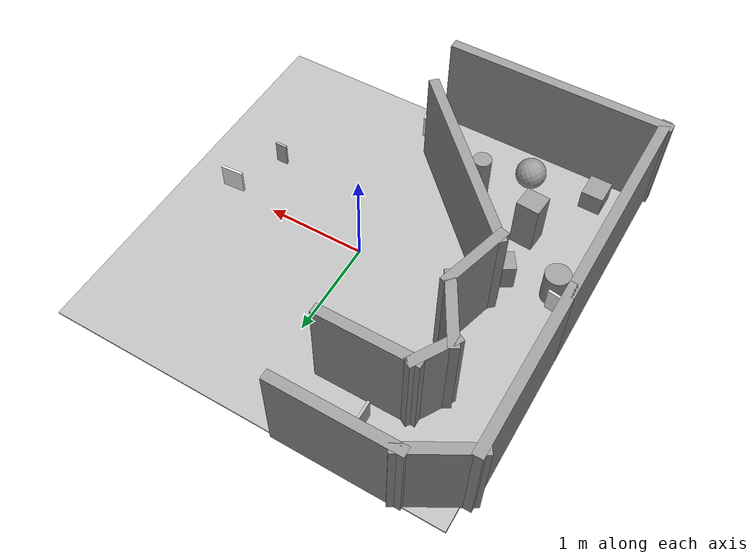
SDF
<sdf version="1.6">
 <world name="auefinals">
  <scene>
   <ambient>0 0 0 1</ambient>
   <shadows>0</shadows>
   <grid>0</grid>
   <background>0.7 0.7 0.7 1</background>
  </scene>
  <model name="course">
   <static>1</static>
   <link name="course_link">
    <collision name="course_collision">
     <geometry><plane><normal>0 0 1</normal><size>4 4</size></plane></geometry>
     <surface><friction><ode><mu>100</mu><mu2>50</mu2></ode></friction></surface>
    </collision>
    <visual name="course_visual">
     <cast_shadows>0</cast_shadows>
     <geometry><plane><normal>0 0 1</normal><size>4 4</size></plane></geometry>
     <material>
      <script>
       <uri>model://course/materials/scripts</uri>
       <uri>model://course/materials/textures</uri>
       <name>course</name>
      </script>
     </material>
    </visual>
   </link>
   <pose>0 0 0 0 -0 1.5708</pose>
  </model>
  <light name="sun" type="directional">
   <pose>0 0 10 0 -0 0</pose>
   <diffuse>0.8 0.8 0.8 1</diffuse>
   <specular>0.1 0.1 0.1 1</specular>
   <attenuation>
    <range>1000</range>
    <constant>0.9</constant>
    <linear>0.01</linear>
    <quadratic>0.001</quadratic>
   </attenuation>
   <direction>-0.5 0.5 -1</direction>
  </light>
  <model name="ground2">
   <pose>-0.003421 -0.000423 -0.01 0 -0 0</pose>
   <static>1</static>
   <link name="ground">
    <collision name="ground_coll"><geometry><box><size>4 4 0.01</size></box></geometry></collision>
    <visual name="ground_vis">
     <geometry><box><size>4 4 0.01</size></box></geometry>
     <material>
      <script><uri>file://media/materials/scripts/gazebo.material</uri><name>Gazebo/FlatBlack</name></script>
     </material>
    </visual>
   </link>
  </model>
  <gravity>0 0 -9.8</gravity>
  <magnetic_field>6e-06 2.3e-05 -4.2e-05</magnetic_field>
  <atmosphere type="adiabatic"/>
  <physics name="default_physics" default="0" type="ode">
   <max_step_size>0.001</max_step_size>
   <real_time_factor>1</real_time_factor>
   <real_time_update_rate>1000</real_time_update_rate>
  </physics>
  <spherical_coordinates>
   <surface_model>EARTH_WGS84</surface_model>
   <latitude_deg>0</latitude_deg>
   <longitude_deg>0</longitude_deg>
   <elevation>0</elevation>
   <heading_deg>0</heading_deg>
  </spherical_coordinates>
  <light name="user_point_light_2" type="point">
   <pose>-0.948146 0.604519 1 0 -0 0</pose>
   <diffuse>0.5 0.5 0.5 1</diffuse>
   <specular>0.1 0.1 0.1 1</specular>
   <attenuation>
    <range>20</range>
    <constant>0.5</constant>
    <linear>0.01</linear>
    <quadratic>0.001</quadratic>
   </attenuation>
   <cast_shadows>0</cast_shadows>
   <direction>0 0 -1</direction>
  </light>
  <light name="user_point_light_6" type="point">
   <pose>1.63854 1.69565 1 0 -0 0</pose>
   <diffuse>0.5 0.5 0.5 1</diffuse>
   <specular>0.1 0.1 0.1 1</specular>
   <attenuation>
    <range>20</range>
    <constant>0.5</constant>
    <linear>0.01</linear>
    <quadratic>0.001</quadratic>
   </attenuation>
   <cast_shadows>0</cast_shadows>
   <direction>0 0 -1</direction>
  </light>
  <light name="user_point_light_7" type="point">
   <pose>0.42 -3.31 1 0 -0 0</pose>
   <diffuse>0.5 0.5 0.5 1</diffuse>
   <specular>0.1 0.1 0.1 1</specular>
   <attenuation>
    <range>20</range>
    <constant>0.5</constant>
    <linear>0.01</linear>
    <quadratic>0.001</quadratic>
   </attenuation>
   <cast_shadows>0</cast_shadows>
   <direction>0 0 -1</direction>
  </light>
  <light name="user_point_light_8" type="point">
   <pose>-1.8 1.5 1 0 -0 0</pose>
   <diffuse>0.5 0.5 0.5 1</diffuse>
   <specular>0.1 0.1 0.1 1</specular>
   <attenuation>
    <range>20</range>
    <constant>0.5</constant>
    <linear>0.01</linear>
    <quadratic>0.001</quadratic>
   </attenuation>
   <cast_shadows>0</cast_shadows>
   <direction>0 0 -1</direction>
  </light>
  <model name="unit_box_0">
   <pose>-1.67923 -1.71215 0.0732 2e-06 3e-06 1.56162</pose>
   <link name="link">
    <inertial>
     <mass>1</mass>
     <inertia>
      <ixx>0.166667</ixx>
      <ixy>0</ixy>
      <ixz>0</ixz>
      <iyy>0.166667</iyy>
      <iyz>0</iyz>
      <izz>0.166667</izz>
     </inertia>
    </inertial>
    <collision name="collision">
     <geometry><box><size>0.245846 0.219412 0.286399</size></box></geometry>
    </collision>
    <visual name="visual">
     <geometry><box><size>0.245846 0.219412 0.286399</size></box></geometry>
     <material>
      <script><name>Gazebo/Grey</name><uri>file://media/materials/scripts/gazebo.material</uri></script>
     </material>
    </visual>
   </link>
  </model>
  <model name="unit_box_1">
   <pose>-1.33179 -0.434125 0.142264 -7e-06 -1.6e-05 0.564785</pose>
   <link name="link">
    <inertial>
     <mass>1</mass>
     <inertia>
      <ixx>0.166667</ixx>
      <ixy>0</ixy>
      <ixz>0</ixz>
      <iyy>0.166667</iyy>
      <iyz>0</iyz>
      <izz>0.166667</izz>
     </inertia>
    </inertial>
    <collision name="collision">
     <geometry><box><size>0.130992 0.203212 0.284528</size></box></geometry>
    </collision>
    <visual name="visual">
     <geometry><box><size>0.130992 0.203212 0.284528</size></box></geometry>
     <material>
      <script><name>Gazebo/Grey</name><uri>file://media/materials/scripts/gazebo.material</uri></script>
     </material>
    </visual>
   </link>
  </model>
  <model name="unit_cylinder_0">
   <pose>-0.681949 -1.12984 0.310915 0.002439 0.005411 -0.242273</pose>
   <link name="link">
    <inertial>
     <mass>1</mass>
     <inertia><ixx>0.145833</ixx><ixy>0</ixy><ixz>0</ixz><iyy>0.145833</iyy><iyz>0</iyz><izz>0.125</izz></inertia>
    </inertial>
    <collision name="collision">
     <geometry><cylinder><radius>0.091359</radius><length>0.620756</length></cylinder></geometry>
    </collision>
    <visual name="visual">
     <geometry><cylinder><radius>0.091359</radius><length>0.620756</length></cylinder></geometry>
     <material>
      <script><name>Gazebo/Grey</name><uri>file://media/materials/scripts/gazebo.material</uri></script>
     </material>
    </visual>
   </link>
  </model>
  <model name="Walls">
   <pose>-1.00889 -0.012836 0 0 -0 0</pose>
   <link name="Wall_10">
    <collision name="Wall_10_Collision">
     <geometry><box><size>2 0.1 1</size></box></geometry>
     <pose>0 0 0.5 0 -0 0</pose>
     <surface>
      <friction>
       <ode><mu>1</mu><mu2>1</mu2><fdir1>0 0 0</fdir1><slip1>0</slip1><slip2>0</slip2></ode>
       <torsional>
        <coefficient>1</coefficient>
        <patch_radius>0</patch_radius>
        <surface_radius>0</surface_radius>
        <use_patch_radius>1</use_patch_radius>
        <ode><slip>0</slip></ode>
       </torsional>
      </friction>
      <bounce><restitution_coefficient>0</restitution_coefficient><threshold>1e+06</threshold></bounce>
      <contact>
       <collide_without_contact>0</collide_without_contact>
       <collide_without_contact_bitmask>1</collide_without_contact_bitmask>
       <collide_bitmask>1</collide_bitmask>
       <ode>
        <soft_cfm>0</soft_cfm>
        <soft_erp>0.2</soft_erp>
        <kp>1e+13</kp>
        <kd>1</kd>
        <max_vel>0.01</max_vel>
        <min_depth>0</min_depth>
       </ode>
       <bullet>
        <split_impulse>1</split_impulse>
        <split_impulse_penetration_threshold>-0.01</split_impulse_penetration_threshold>
        <soft_cfm>0</soft_cfm>
        <soft_erp>0.2</soft_erp>
        <kp>1e+13</kp>
        <kd>1</kd>
       </bullet>
      </contact>
     </surface>
    </collision>
    <visual name="Wall_10_Visual">
     <pose>0 0 0.5 0 -0 0</pose>
     <geometry><box><size>2 0.1 1</size></box></geometry>
     <material>
      <script><uri>file://media/materials/scripts/gazebo.material</uri><name>Gazebo/Grey</name></script>
      <ambient>1 1 1 1</ambient>
     </material>
    </visual>
    <pose>0.35664 -0.75882 0 0 -0 2.35619</pose>
   </link>
   <link name="Wall_12">
    <collision name="Wall_12_Collision">
     <geometry><box><size>2.26002 0.1 1</size></box></geometry>
     <pose>0 0 0.5 0 -0 0</pose>
    </collision>
    <visual name="Wall_12_Visual">
     <pose>0 0 0.5 0 -0 0</pose>
     <geometry><box><size>2.26002 0.1 1</size></box></geometry>
     <material>
      <script><uri>file://media/materials/scripts/gazebo.material</uri><name>Gazebo/Grey</name></script>
      <ambient>1 1 1 1</ambient>
     </material>
    </visual>
    <pose>0.01372 -2.01873 0 0 -0 3.14159</pose>
   </link>
   <link name="Wall_13">
    <collision name="Wall_13_Collision">
     <geometry><box><size>2.25 0.1 1</size></box></geometry>
     <pose>0 0 0.5 0 -0 0</pose>
    </collision>
    <visual name="Wall_13_Visual">
     <pose>0 0 0.5 0 -0 0</pose>
     <geometry><box><size>2.25 0.1 1</size></box></geometry>
     <material>
      <script><uri>file://media/materials/scripts/gazebo.material</uri><name>Gazebo/Grey</name></script>
      <ambient>1 1 1 1</ambient>
     </material>
    </visual>
    <pose>-1.04128 -0.958726 0 0 -0 1.5708</pose>
   </link>
   <link name="Wall_19">
    <collision name="Wall_19_Collision">
     <geometry><box><size>1.75 0.1 1</size></box></geometry>
     <pose>0 0 0.5 0 -0 0</pose>
    </collision>
    <visual name="Wall_19_Visual">
     <pose>0 0 0.5 0 -0 0</pose>
     <geometry><box><size>1.75 0.1 1</size></box></geometry>
     <material>
      <script><uri>file://media/materials/scripts/gazebo.material</uri><name>Gazebo/Grey</name></script>
      <ambient>1 1 1 1</ambient>
     </material>
    </visual>
    <pose>-1.04128 0.891274 0 0 -0 1.5708</pose>
   </link>
   <link name="Wall_21">
    <collision name="Wall_21_Collision">
     <geometry><box><size>0.75 0.1 1</size></box></geometry>
     <pose>0 0 0.5 0 -0 0</pose>
    </collision>
    <visual name="Wall_21_Visual">
     <pose>0 0 0.5 0 -0 0</pose>
     <geometry><box><size>0.75 0.1 1</size></box></geometry>
     <material>
      <script><uri>file://media/materials/scripts/gazebo.material</uri><name>Gazebo/Grey</name></script>
      <ambient>1 1 1 1</ambient>
     </material>
    </visual>
    <pose>-0.781472 1.84127 0 0 -0 0.523599</pose>
   </link>
   <link name="Wall_22">
    <collision name="Wall_22_Collision">
     <geometry><box><size>1.25 0.1 1</size></box></geometry>
     <pose>0 0 0.5 0 -0 0</pose>
    </collision>
    <visual name="Wall_22_Visual">
     <pose>0 0 0.5 0 -0 0</pose>
     <geometry><box><size>1.25 0.1 1</size></box></geometry>
     <material>
      <script><uri>file://media/materials/scripts/gazebo.material</uri><name>Gazebo/Grey</name></script>
      <ambient>1 1 1 1</ambient>
     </material>
    </visual>
    <pose>0.028335 1.99127 0 0 -0 0</pose>
   </link>
   <link name="Wall_24">
    <collision name="Wall_24_Collision">
     <geometry><box><size>0.75 0.1 1</size></box></geometry>
     <pose>0 0 0.5 0 -0 0</pose>
    </collision>
    <visual name="Wall_24_Visual">
     <pose>0 0 0.5 0 -0 0</pose>
     <geometry><box><size>0.75 0.1 1</size></box></geometry>
     <material>
      <script><uri>file://media/materials/scripts/gazebo.material</uri><name>Gazebo/Grey</name></script>
      <ambient>1 1 1 1</ambient>
     </material>
    </visual>
    <pose>-0.219788 0.185031 0 0 -0 1.309</pose>
   </link>
   <link name="Wall_25">
    <collision name="Wall_25_Collision">
     <geometry><box><size>0.75 0.1 1</size></box></geometry>
     <pose>0 0 0.5 0 -0 0</pose>
    </collision>
    <visual name="Wall_25_Visual">
     <pose>0 0 0.5 0 -0 0</pose>
     <geometry><box><size>0.75 0.1 1</size></box></geometry>
     <material>
      <script><uri>file://media/materials/scripts/gazebo.material</uri><name>Gazebo/Grey</name></script>
      <ambient>1 1 1 1</ambient>
     </material>
    </visual>
    <pose>-0.292142 0.734617 0 0 -0 2.0944</pose>
   </link>
   <link name="Wall_26">
    <collision name="Wall_26_Collision">
     <geometry><box><size>0.5 0.1 1</size></box></geometry>
     <pose>0 0 0.5 0 -0 0</pose>
    </collision>
    <visual name="Wall_26_Visual">
     <pose>0 0 0.5 0 -0 0</pose>
     <geometry><box><size>0.5 0.1 1</size></box></geometry>
     <material>
      <script><uri>file://media/materials/scripts/gazebo.material</uri><name>Gazebo/Grey</name></script>
      <ambient>1 1 1 1</ambient>
     </material>
    </visual>
    <pose>-0.354642 1.14598 0 0 -0 1.0472</pose>
   </link>
   <link name="Wall_27">
    <collision name="Wall_27_Collision">
     <geometry><box><size>1 0.1 1</size></box></geometry>
     <pose>0 0 0.5 0 -0 0</pose>
     <surface>
      <friction>
       <ode><mu>1</mu><mu2>1</mu2><fdir1>0 0 0</fdir1><slip1>0</slip1><slip2>0</slip2></ode>
       <torsional>
        <coefficient>1</coefficient>
        <patch_radius>0</patch_radius>
        <surface_radius>0</surface_radius>
        <use_patch_radius>1</use_patch_radius>
        <ode><slip>0</slip></ode>
       </torsional>
      </friction>
      <bounce><restitution_coefficient>0</restitution_coefficient><threshold>1e+06</threshold></bounce>
      <contact>
       <collide_without_contact>0</collide_without_contact>
       <collide_without_contact_bitmask>1</collide_without_contact_bitmask>
       <collide_bitmask>1</collide_bitmask>
       <ode>
        <soft_cfm>0</soft_cfm>
        <soft_erp>0.2</soft_erp>
        <kp>1e+13</kp>
        <kd>1</kd>
        <max_vel>0.01</max_vel>
        <min_depth>0</min_depth>
       </ode>
       <bullet>
        <split_impulse>1</split_impulse>
        <split_impulse_penetration_threshold>-0.01</split_impulse_penetration_threshold>
        <soft_cfm>0</soft_cfm>
        <soft_erp>0.2</soft_erp>
        <kp>1e+13</kp>
        <kd>1</kd>
       </bullet>
      </contact>
     </surface>
    </collision>
    <visual name="Wall_27_Visual">
     <pose>0 0 0.5 0 -0 0</pose>
     <geometry><box><size>1 0.1 1</size></box></geometry>
     <material>
      <script><uri>file://media/materials/scripts/gazebo.material</uri><name>Gazebo/Grey</name></script>
      <ambient>1 1 1 1</ambient>
     </material>
    </visual>
    <pose>0.157858 1.29753 0 0 -0 0</pose>
   </link>
   <static>1</static>
  </model>
  <model name="traffic_stop">
   <static>1</static>
   <link name="box">
    <collision name="collision"><geometry><box><size>0.12 0.025 0.25</size></box></geometry></collision>
    <visual name="visual">
     <geometry><box><size>0.12 0.025 0.25</size></box></geometry>
     <material>
      <script>
       <uri>model://traffic_stop/materials/scripts</uri>
       <uri>model://traffic_stop/materials/textures</uri>
       <name>traffic_stop</name>
      </script>
     </material>
    </visual>
    <kinematic>0ag</kinematic>
   </link>
   <pose>1.2689 -0.587152 0.126884 0 -0 0</pose>
  </model>
  <model name="april_tag_0">
   <static>1</static>
   <link name="box">
    <collision name="collision"><geometry><box><size>0.224411 0.025 0.25</size></box></geometry></collision>
    <visual name="visual">
     <geometry><box><size>0.224411 0.025 0.25</size></box></geometry>
     <material>
      <script>
       <uri>model://april_tag_0/materials/scripts</uri>
       <uri>model://april_tag_0/materials/textures</uri>
       <name>april_tag_0</name>
      </script>
     </material>
    </visual>
   </link>
   <pose>-0.999582 1.60915 0.270453 0 -0 1.58123</pose>
  </model>
  <model name="unit_sphere_0">
   <pose>-1.02848 -1.61152 0.153046 0.696979 0.376873 0.737573</pose>
   <link name="link">
    <inertial>
     <mass>1</mass>
     <inertia><ixx>0.1</ixx><ixy>0</ixy><ixz>0</ixz><iyy>0.1</iyy><iyz>0</iyz><izz>0.1</izz></inertia>
    </inertial>
    <collision name="collision"><geometry><sphere><radius>0.153046</radius></sphere></geometry></collision>
    <visual name="visual">
     <geometry><sphere><radius>0.153046</radius></sphere></geometry>
     <material>
      <script><name>Gazebo/Grey</name><uri>file://media/materials/scripts/gazebo.material</uri></script>
     </material>
    </visual>
   </link>
  </model>
  <model name="april_tag_1">
   <link name="box">
    <pose>0 0 0 0 -0 2.46246</pose>
    <visual name="visual">
     <geometry><box><size>0.224411 0.025 0.25</size></box></geometry>
     <material>
      <script>
       <uri>model://april_tag_1/materials/scripts</uri>
       <uri>model://april_tag_1/materials/textures</uri>
       <name>april_tag_1</name>
      </script>
      <ambient>1 1 1 1</ambient>
      <diffuse>1 1 1 1</diffuse>
      <specular>0 0 0 1</specular>
      <emissive>0 0 0 1</emissive>
     </material>
    </visual>
    <collision name="collision">
     <geometry><box><size>0.224411 0.025 0.25</size></box></geometry>
     <surface>
      <friction>
       <ode><mu>1</mu><mu2>1</mu2><fdir1>0 0 0</fdir1><slip1>0</slip1><slip2>0</slip2></ode>
       <torsional>
        <coefficient>1</coefficient>
        <patch_radius>0</patch_radius>
        <surface_radius>0</surface_radius>
        <use_patch_radius>1</use_patch_radius>
        <ode><slip>0</slip></ode>
       </torsional>
      </friction>
      <bounce><restitution_coefficient>0</restitution_coefficient><threshold>1e+06</threshold></bounce>
      <contact>
       <collide_without_contact>0</collide_without_contact>
       <collide_without_contact_bitmask>1</collide_without_contact_bitmask>
       <collide_bitmask>1</collide_bitmask>
       <ode>
        <soft_cfm>0</soft_cfm>
        <soft_erp>0.2</soft_erp>
        <kp>1e+13</kp>
        <kd>1</kd>
        <max_vel>0.01</max_vel>
        <min_depth>0</min_depth>
       </ode>
       <bullet>
        <split_impulse>1</split_impulse>
        <split_impulse_penetration_threshold>-0.01</split_impulse_penetration_threshold>
        <soft_cfm>0</soft_cfm>
        <soft_erp>0.2</soft_erp>
        <kp>1e+13</kp>
        <kd>1</kd>
       </bullet>
      </contact>
     </surface>
    </collision>
   </link>
   <static>1</static>
   <pose>-1.89102 -0.32361 0.134435 0 -0.006148 0.532089</pose>
  </model>
  <model name="april_tag_2">
   <link name="box">
    <pose>0 0 0 0 -0 2.46246</pose>
    <visual name="visual">
     <geometry><box><size>0.224411 0.025 0.25</size></box></geometry>
     <material>
      <script>
       <uri>model://april_tag_2/materials/scripts</uri>
       <uri>model://april_tag_2/materials/textures</uri>
       <name>april_tag_2</name>
      </script>
      <ambient>1 1 1 1</ambient>
      <diffuse>1 1 1 1</diffuse>
      <specular>0 0 0 1</specular>
      <emissive>0 0 0 1</emissive>
     </material>
    </visual>
    <collision name="collision">
     <geometry><box><size>0.224411 0.025 0.25</size></box></geometry>
     <surface>
      <friction>
       <ode><mu>1</mu><mu2>1</mu2><fdir1>0 0 0</fdir1><slip1>0</slip1><slip2>0</slip2></ode>
       <torsional>
        <coefficient>1</coefficient>
        <patch_radius>0</patch_radius>
        <surface_radius>0</surface_radius>
        <use_patch_radius>1</use_patch_radius>
        <ode><slip>0</slip></ode>
       </torsional>
      </friction>
      <bounce><restitution_coefficient>0</restitution_coefficient><threshold>1e+06</threshold></bounce>
      <contact>
       <collide_without_contact>0</collide_without_contact>
       <collide_without_contact_bitmask>1</collide_without_contact_bitmask>
       <collide_bitmask>1</collide_bitmask>
       <ode>
        <soft_cfm>0</soft_cfm>
        <soft_erp>0.2</soft_erp>
        <kp>1e+13</kp>
        <kd>1</kd>
        <max_vel>0.01</max_vel>
        <min_depth>0</min_depth>
       </ode>
       <bullet>
        <split_impulse>1</split_impulse>
        <split_impulse_penetration_threshold>-0.01</split_impulse_penetration_threshold>
        <soft_cfm>0</soft_cfm>
        <soft_erp>0.2</soft_erp>
        <kp>1e+13</kp>
        <kd>1</kd>
       </bullet>
      </contact>
     </surface>
    </collision>
   </link>
   <static>1</static>
   <pose>0.154157 -1.61458 0.28956 0.005774 -0.002113 -0.687939</pose>
  </model>
  <model name="april_tag_3">
   <link name="box">
    <pose>0 0 0 0 -0 2.46246</pose>
    <visual name="visual">
     <geometry><box><size>0.224411 0.025 0.25</size></box></geometry>
     <material>
      <script>
       <uri>model://april_tag_3/materials/scripts</uri>
       <uri>model://april_tag_3/materials/textures</uri>
       <name>april_tag_3</name>
      </script>
      <ambient>1 1 1 1</ambient>
      <diffuse>1 1 1 1</diffuse>
      <specular>0 0 0 1</specular>
      <emissive>0 0 0 1</emissive>
     </material>
    </visual>
    <collision name="collision">
     <geometry><box><size>0.224411 0.025 0.25</size></box></geometry>
     <surface>
      <friction>
       <ode><mu>1</mu><mu2>1</mu2><fdir1>0 0 0</fdir1><slip1>0</slip1><slip2>0</slip2></ode>
       <torsional>
        <coefficient>1</coefficient>
        <patch_radius>0</patch_radius>
        <surface_radius>0</surface_radius>
        <use_patch_radius>1</use_patch_radius>
        <ode><slip>0</slip></ode>
       </torsional>
      </friction>
      <bounce><restitution_coefficient>0</restitution_coefficient><threshold>1e+06</threshold></bounce>
      <contact>
       <collide_without_contact>0</collide_without_contact>
       <collide_without_contact_bitmask>1</collide_without_contact_bitmask>
       <collide_bitmask>1</collide_bitmask>
       <ode>
        <soft_cfm>0</soft_cfm>
        <soft_erp>0.2</soft_erp>
        <kp>1e+13</kp>
        <kd>1</kd>
        <max_vel>0.01</max_vel>
        <min_depth>0</min_depth>
       </ode>
       <bullet>
        <split_impulse>1</split_impulse>
        <split_impulse_penetration_threshold>-0.01</split_impulse_penetration_threshold>
        <soft_cfm>0</soft_cfm>
        <soft_erp>0.2</soft_erp>
        <kp>1e+13</kp>
        <kd>1</kd>
       </bullet>
      </contact>
     </surface>
    </collision>
   </link>
   <static>1</static>
   <pose>1.39764 0.051038 0.28956 -0.001346 -0.005999 0.752767</pose>
  </model>
  <model name="course">
   <pose>0 0 0 0 -0 1.5708</pose>
   <scale>1 1 1</scale>
   <link name="course_link">
    <pose>0 0 0 0 -0 1.5708</pose>
    <velocity>0 0 0 0 -0 0</velocity>
    <acceleration>0 0 0 0 -0 0</acceleration>
    <wrench>0 0 0 0 -0 0</wrench>
   </link>
  </model>
  <model name="unit_cylinder_1">
   <pose>-1.79432 -0.486001 0.170361 -0.001022 -0.001359 -1.94522</pose>
   <link name="link">
    <inertial>
     <mass>1</mass>
     <inertia><ixx>0.145833</ixx><ixy>0</ixy><ixz>0</ixz><iyy>0.145833</iyy><iyz>0</iyz><izz>0.125</izz></inertia>
    </inertial>
    <collision name="collision">
     <geometry><cylinder><radius>0.123106</radius><length>0.340305</length></cylinder></geometry>
    </collision>
    <visual name="visual">
     <geometry><cylinder><radius>0.123106</radius><length>0.340305</length></cylinder></geometry>
     <material>
      <script><name>Gazebo/Grey</name><uri>file://media/materials/scripts/gazebo.material</uri></script>
     </material>
    </visual>
   </link>
  </model>
  <model name="unit_box_2">
   <pose>-1.28907 -0.97229 0.27565 4e-06 -2e-06 -0.07317</pose>
   <link name="link">
    <inertial>
     <mass>1</mass>
     <inertia>
      <ixx>0.166667</ixx>
      <ixy>0</ixy>
      <ixz>0</ixz>
      <iyy>0.166667</iyy>
      <iyz>0</iyz>
      <izz>0.166667</izz>
     </inertia>
    </inertial>
    <collision name="collision">
     <geometry><box><size>0.231874 0.221189 0.551301</size></box></geometry>
    </collision>
    <visual name="visual">
     <geometry><box><size>0.231874 0.221189 0.551301</size></box></geometry>
     <material>
      <script><name>Gazebo/Grey</name><uri>file://media/materials/scripts/gazebo.material</uri></script>
     </material>
    </visual>
   </link>
  </model>
 </world>
</sdf>
